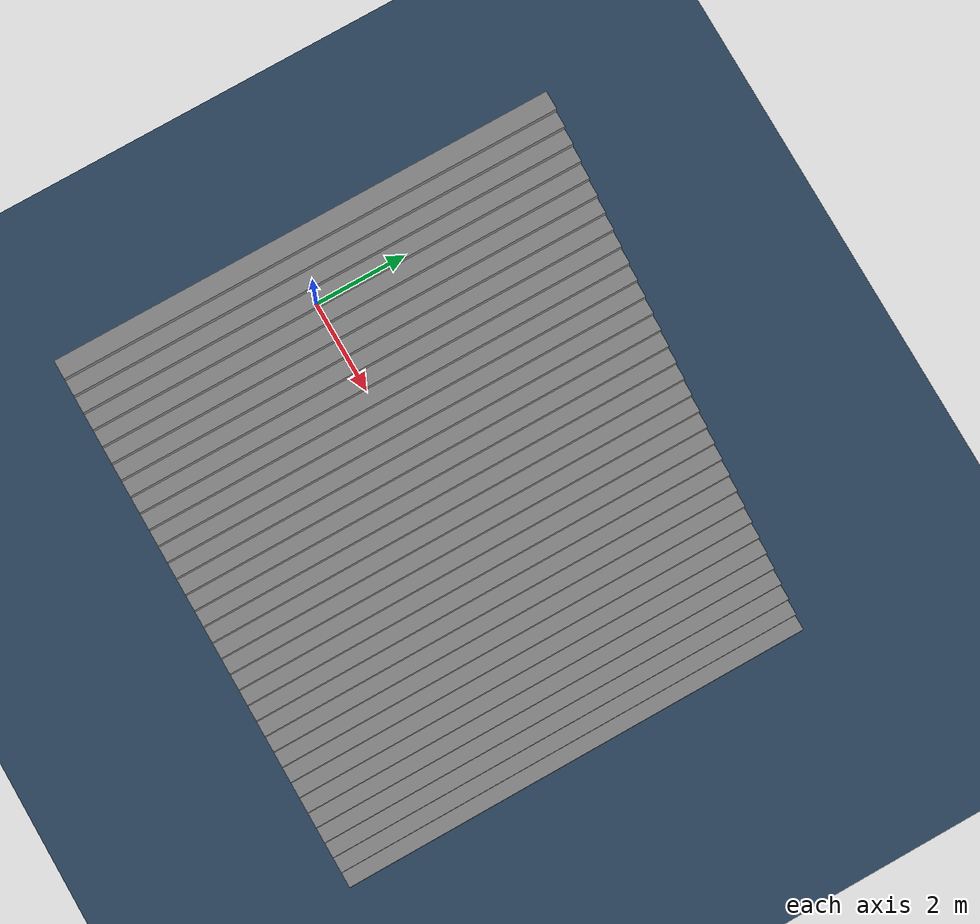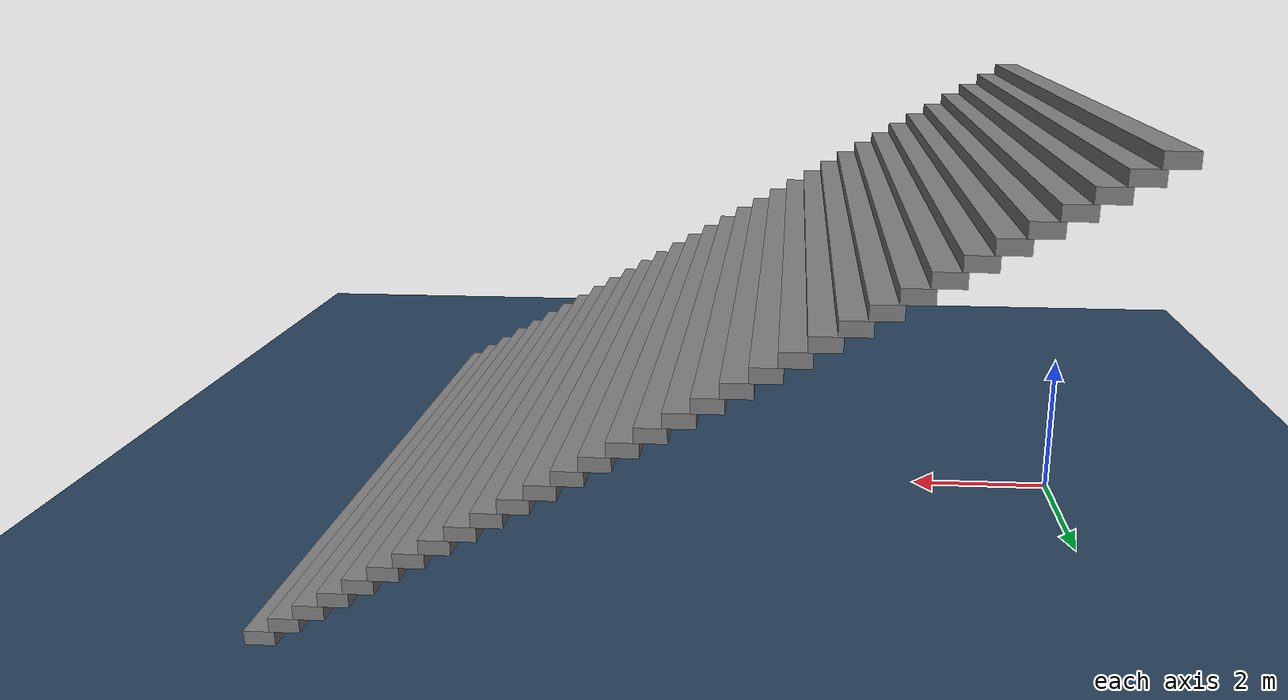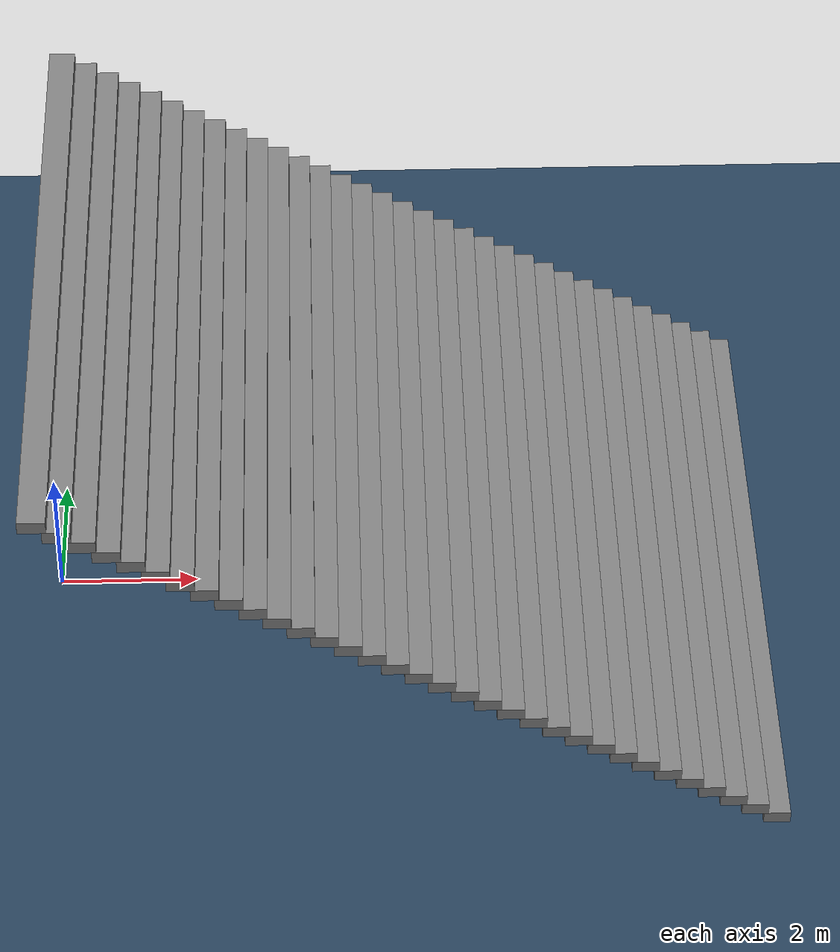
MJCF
<mujoco model="stairs_down_5">
  <!-- Terrain Type: stairs_down, Level: 5, Stairs step height: 0.1800 -->
  <statistic center="0 0 0.1" extent="0.8" />
  <visual>
    <headlight diffuse="0.6 0.6 0.6" ambient="0.3 0.3 0.3" specular="0 0 0" />
    <rgba haze="0.15 0.25 0.35 1" />
    <global azimuth="-130" elevation="-20" />
  </visual>
  <asset>
    <texture type="skybox" builtin="gradient" rgb1="0.3 0.5 0.7" rgb2="0 0 0" width="512" height="3072" />
    <texture type="2d" name="groundplane" builtin="checker" mark="edge" rgb1="0.2 0.3 0.4" rgb2="0.1 0.2 0.3" markrgb="0.8 0.8 0.8" width="300" height="300" />
    <material name="groundplane" texture="groundplane" texuniform="true" texrepeat="5 5" reflectance="0.0" />
  </asset>
  <worldbody>
    <light pos="0 0 1.5" dir="0 0 -1" directional="true" />
    <geom name="floor" size="0 0 0.05" type="plane" material="groundplane" />
    <geom pos="0.155 0.0 5.8500000000000005" type="box" size="0.186 5.0 0.09000000000000001" quat="1.0 0.0 0.0 0.0" />
    <geom pos="0.46499999999999997 0.0 5.670000000000001" type="box" size="0.186 5.0 0.09000000000000001" quat="1.0 0.0 0.0 0.0" />
    <geom pos="0.7749999999999999 0.0 5.490000000000001" type="box" size="0.186 5.0 0.09000000000000001" quat="1.0 0.0 0.0 0.0" />
    <geom pos="1.085 0.0 5.310000000000001" type="box" size="0.186 5.0 0.09000000000000001" quat="1.0 0.0 0.0 0.0" />
    <geom pos="1.395 0.0 5.130000000000002" type="box" size="0.186 5.0 0.09000000000000001" quat="1.0 0.0 0.0 0.0" />
    <geom pos="1.705 0.0 4.950000000000002" type="box" size="0.186 5.0 0.09000000000000001" quat="1.0 0.0 0.0 0.0" />
    <geom pos="2.015 0.0 4.770000000000002" type="box" size="0.186 5.0 0.09000000000000001" quat="1.0 0.0 0.0 0.0" />
    <geom pos="2.325 0.0 4.5900000000000025" type="box" size="0.186 5.0 0.09000000000000001" quat="1.0 0.0 0.0 0.0" />
    <geom pos="2.6350000000000002 0.0 4.410000000000003" type="box" size="0.186 5.0 0.09000000000000001" quat="1.0 0.0 0.0 0.0" />
    <geom pos="2.9450000000000003 0.0 4.230000000000003" type="box" size="0.186 5.0 0.09000000000000001" quat="1.0 0.0 0.0 0.0" />
    <geom pos="3.2550000000000003 0.0 4.050000000000003" type="box" size="0.186 5.0 0.09000000000000001" quat="1.0 0.0 0.0 0.0" />
    <geom pos="3.5650000000000004 0.0 3.870000000000003" type="box" size="0.186 5.0 0.09000000000000001" quat="1.0 0.0 0.0 0.0" />
    <geom pos="3.8750000000000004 0.0 3.690000000000003" type="box" size="0.186 5.0 0.09000000000000001" quat="1.0 0.0 0.0 0.0" />
    <geom pos="4.1850000000000005 0.0 3.510000000000003" type="box" size="0.186 5.0 0.09000000000000001" quat="1.0 0.0 0.0 0.0" />
    <geom pos="4.495 0.0 3.3300000000000027" type="box" size="0.186 5.0 0.09000000000000001" quat="1.0 0.0 0.0 0.0" />
    <geom pos="4.805 0.0 3.1500000000000026" type="box" size="0.186 5.0 0.09000000000000001" quat="1.0 0.0 0.0 0.0" />
    <geom pos="5.114999999999999 0.0 2.9700000000000024" type="box" size="0.186 5.0 0.09000000000000001" quat="1.0 0.0 0.0 0.0" />
    <geom pos="5.424999999999999 0.0 2.7900000000000023" type="box" size="0.186 5.0 0.09000000000000001" quat="1.0 0.0 0.0 0.0" />
    <geom pos="5.7349999999999985 0.0 2.610000000000002" type="box" size="0.186 5.0 0.09000000000000001" quat="1.0 0.0 0.0 0.0" />
    <geom pos="6.044999999999998 0.0 2.430000000000002" type="box" size="0.186 5.0 0.09000000000000001" quat="1.0 0.0 0.0 0.0" />
    <geom pos="6.354999999999998 0.0 2.2500000000000018" type="box" size="0.186 5.0 0.09000000000000001" quat="1.0 0.0 0.0 0.0" />
    <geom pos="6.664999999999997 0.0 2.0700000000000016" type="box" size="0.186 5.0 0.09000000000000001" quat="1.0 0.0 0.0 0.0" />
    <geom pos="6.974999999999997 0.0 1.8900000000000017" type="box" size="0.186 5.0 0.09000000000000001" quat="1.0 0.0 0.0 0.0" />
    <geom pos="7.284999999999997 0.0 1.7100000000000017" type="box" size="0.186 5.0 0.09000000000000001" quat="1.0 0.0 0.0 0.0" />
    <geom pos="7.594999999999996 0.0 1.5300000000000018" type="box" size="0.186 5.0 0.09000000000000001" quat="1.0 0.0 0.0 0.0" />
    <geom pos="7.904999999999996 0.0 1.3500000000000019" type="box" size="0.186 5.0 0.09000000000000001" quat="1.0 0.0 0.0 0.0" />
    <geom pos="8.214999999999996 0.0 1.170000000000002" type="box" size="0.186 5.0 0.09000000000000001" quat="1.0 0.0 0.0 0.0" />
    <geom pos="8.524999999999997 0.0 0.9900000000000019" type="box" size="0.186 5.0 0.09000000000000001" quat="1.0 0.0 0.0 0.0" />
    <geom pos="8.834999999999997 0.0 0.8100000000000018" type="box" size="0.186 5.0 0.09000000000000001" quat="1.0 0.0 0.0 0.0" />
    <geom pos="9.144999999999998 0.0 0.6300000000000018" type="box" size="0.186 5.0 0.09000000000000001" quat="1.0 0.0 0.0 0.0" />
    <geom pos="9.454999999999998 0.0 0.45000000000000173" type="box" size="0.186 5.0 0.09000000000000001" quat="1.0 0.0 0.0 0.0" />
    <geom pos="9.764999999999999 0.0 0.2700000000000017" type="box" size="0.186 5.0 0.09000000000000001" quat="1.0 0.0 0.0 0.0" />
    <geom pos="10.075 0.0 0.09000000000000166" type="box" size="0.186 5.0 0.09000000000000001" quat="1.0 0.0 0.0 0.0" />
  </worldbody>
</mujoco>
